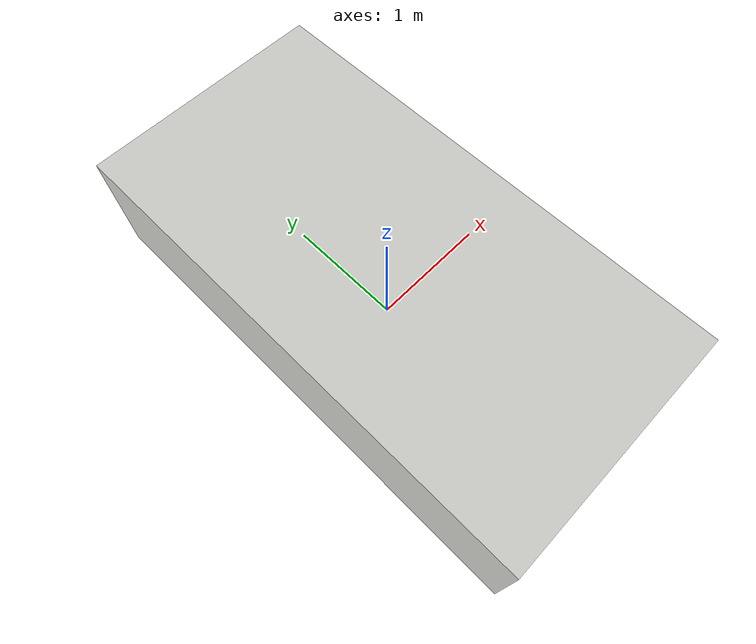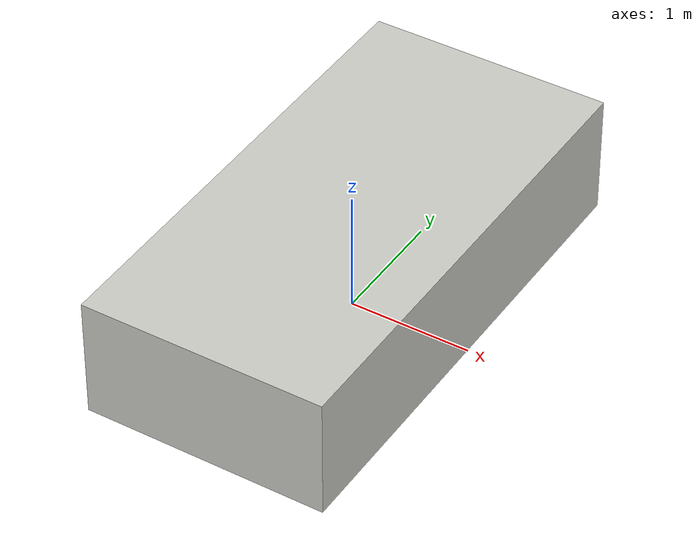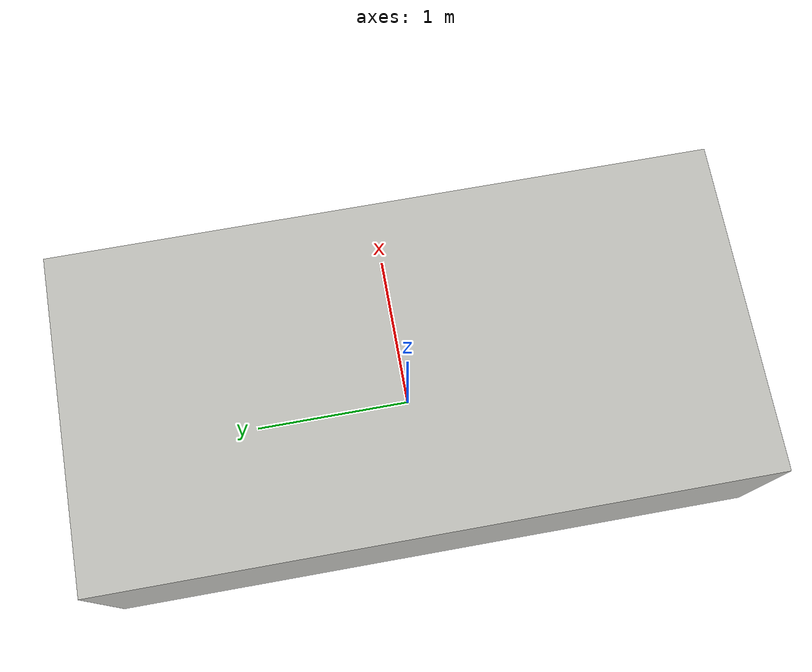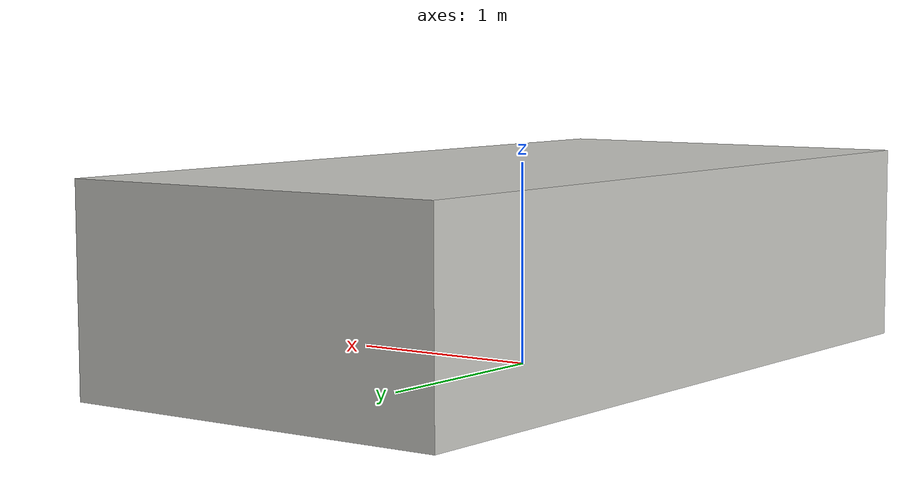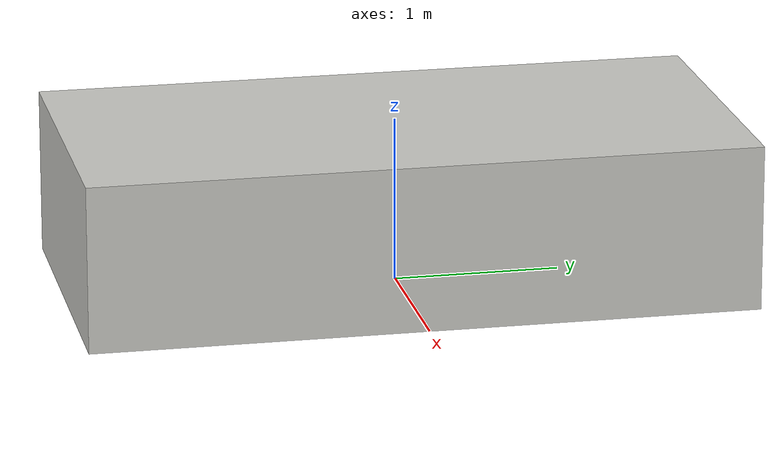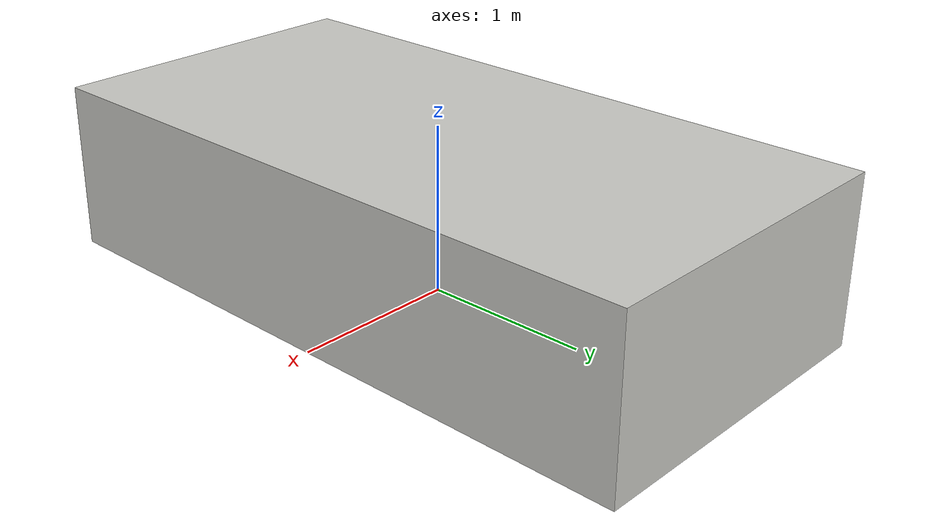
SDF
<?xml version='1.0'?>
<sdf version='1.6'>
  <model name='block_2x4m'>
    <pose frame=''>0 0 0 0 -0 0</pose>
    <link name='Block'>
      <collision name='Block_Collision'>
        <geometry>
          <box>
            <size>2 4 1</size>
          </box>
        </geometry>
        <pose frame=''>0 0 0.5 0 -0 0</pose>
      </collision>
      <visual name='Block_Visual'>
        <pose frame=''>0 0 0.5 0 -0 0</pose>
        <geometry>
          <box>
            <size>2 4 1</size>
          </box>
        </geometry>
        <material>
          <script>
            <uri>file://media/materials/scripts/gazebo.material</uri>
            <name>Gazebo/CeilingTiled</name>
          </script>
          <ambient>1 0.764706 0.305882 1</ambient>
        </material>
      </visual>
      <pose frame=''>0 0 0 0 -0 0</pose>
    </link>
    <static>1</static>
  </model>
</sdf>
